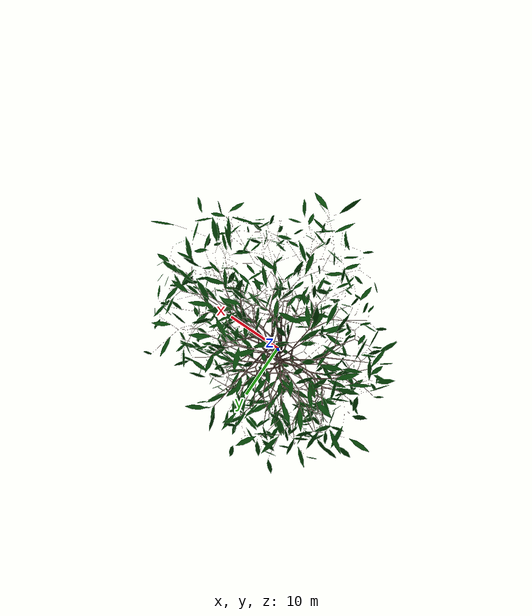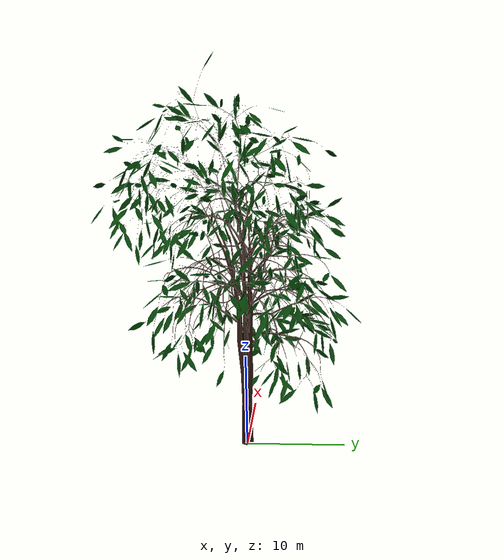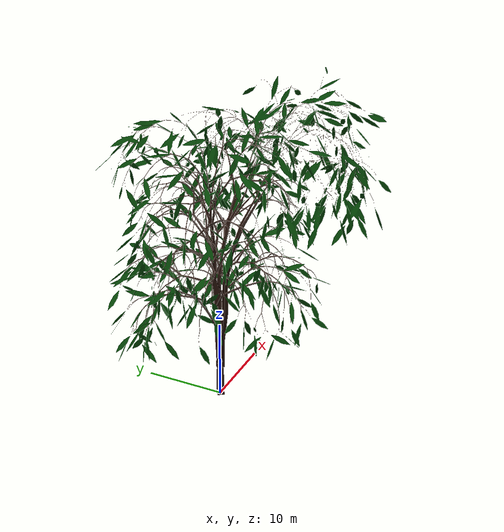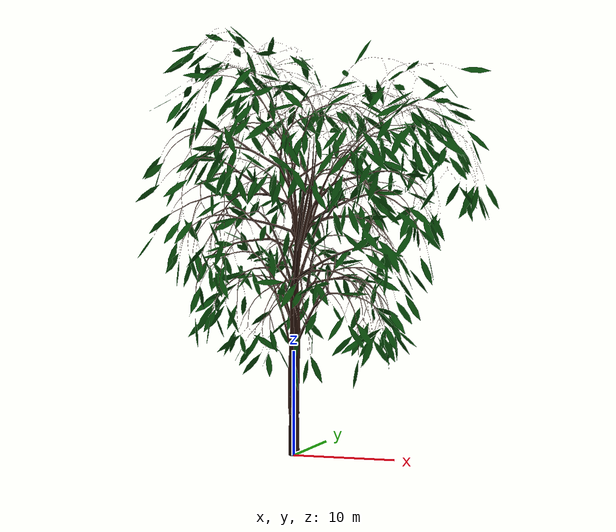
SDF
<?xml version="1.0" ?>
<sdf version='1.4'>
  <model name="tree">
      <static>1</static>
      <link name='link'>
        <visual name='visual'>
          <geometry>
            <mesh>
              <uri>model://tree/meshes/tree.dae</uri>
              <scale>5 5 5</scale>
            </mesh>
          </geometry>
        </visual>
      </link>
  </model>
</sdf>
